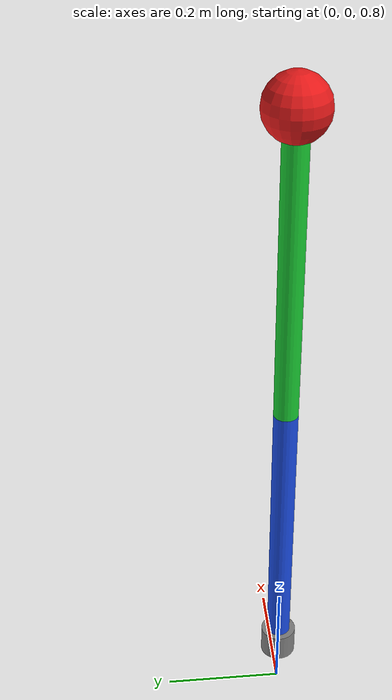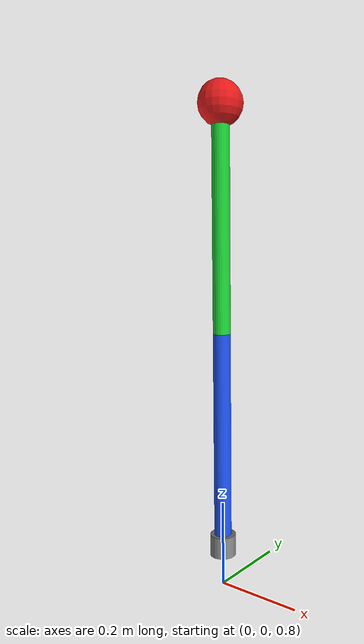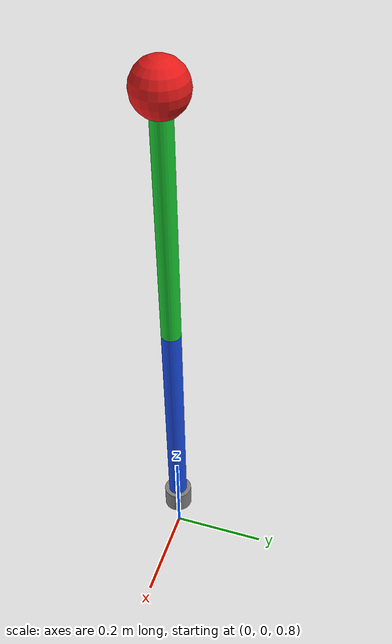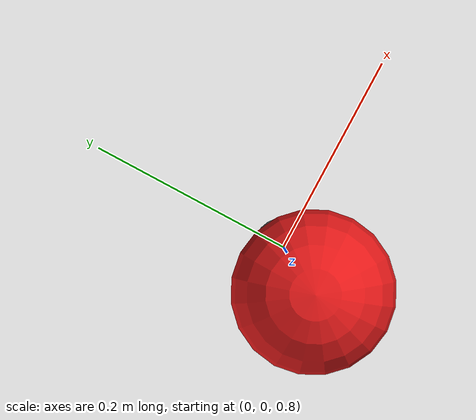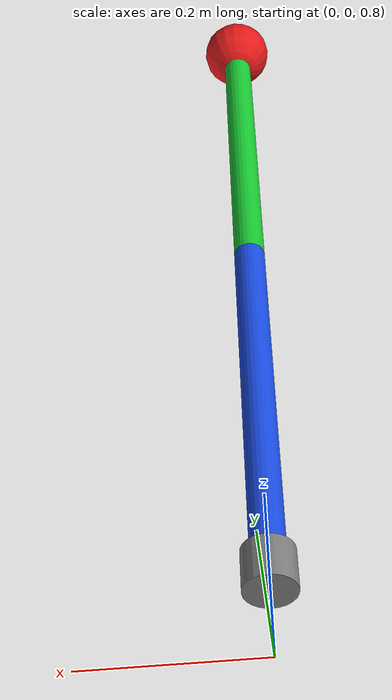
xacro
<?xml version="1.0"?>
<robot name="double_pendulum" xmlns:xacro="http://www.ros.org/wiki/xacro">

  <xacro:property name="link_length" value="0.5"/>
  <xacro:property name="link_radius" value="0.02"/>
  <xacro:property name="bob_radius" value="0.05"/>

  <link name="world"/>

  <link name="base_link">
    <visual>
      <geometry><cylinder radius="0.03" length="0.05"/></geometry>
      <material name="grey"><color rgba="0.5 0.5 0.5 1"/></material>
    </visual>
  </link>

  <joint name="world_to_base" type="fixed">
    <parent link="world"/>
    <child link="base_link"/>
    <origin xyz="0 0 0.9" rpy="0 0 0"/>
  </joint>

  <!-- joint1 = base joint (theta1, 0 = upright). Joint names MUST match
       sim_node's joint_states names. -->
  <link name="link1">
    <visual>
      <origin xyz="0 0 ${link_length/2}" rpy="0 0 0"/>
      <geometry><cylinder radius="${link_radius}" length="${link_length}"/></geometry>
      <material name="blue"><color rgba="0.1 0.3 0.9 1"/></material>
    </visual>
  </link>

  <joint name="joint1" type="revolute">
    <parent link="base_link"/>
    <child link="link1"/>
    <origin xyz="0 0 0" rpy="0 0 0"/>
    <axis xyz="0 1 0"/>
    <limit lower="-6.283" upper="6.283" effort="10" velocity="20"/>
  </joint>

  <!-- joint2 = elbow joint (theta2, relative to link1). -->
  <link name="link2">
    <visual>
      <origin xyz="0 0 ${link_length/2}" rpy="0 0 0"/>
      <geometry><cylinder radius="${link_radius}" length="${link_length}"/></geometry>
      <material name="green"><color rgba="0.1 0.8 0.2 1"/></material>
    </visual>
  </link>

  <joint name="joint2" type="revolute">
    <parent link="link1"/>
    <child link="link2"/>
    <origin xyz="0 0 ${link_length}" rpy="0 0 0"/>
    <axis xyz="0 1 0"/>
    <limit lower="-6.283" upper="6.283" effort="10" velocity="20"/>
  </joint>

  <link name="bob_link">
    <visual>
      <geometry><sphere radius="${bob_radius}"/></geometry>
      <material name="red"><color rgba="0.9 0.1 0.1 1"/></material>
    </visual>
  </link>

  <joint name="link2_to_bob" type="fixed">
    <parent link="link2"/>
    <child link="bob_link"/>
    <origin xyz="0 0 ${link_length}" rpy="0 0 0"/>
  </joint>

</robot>
